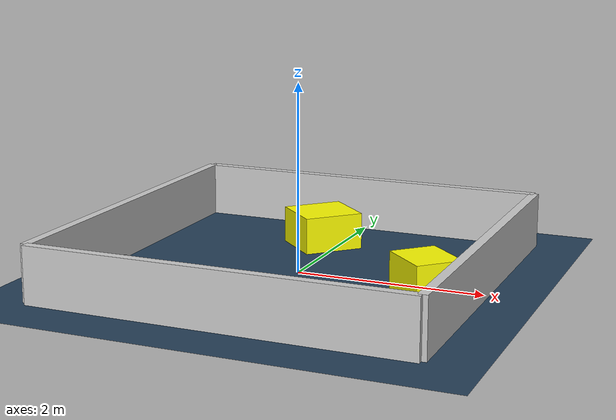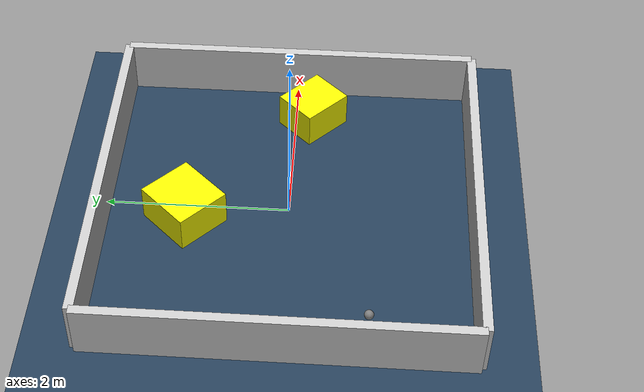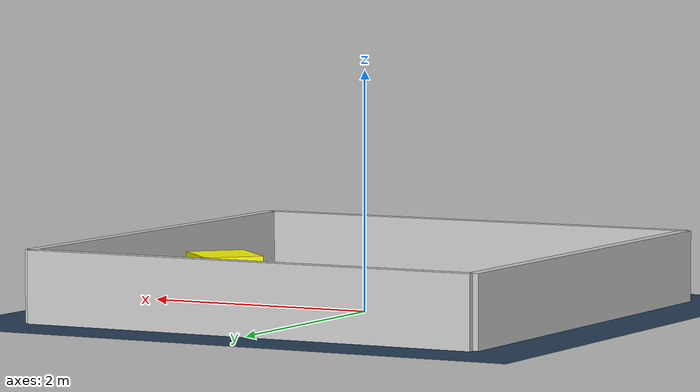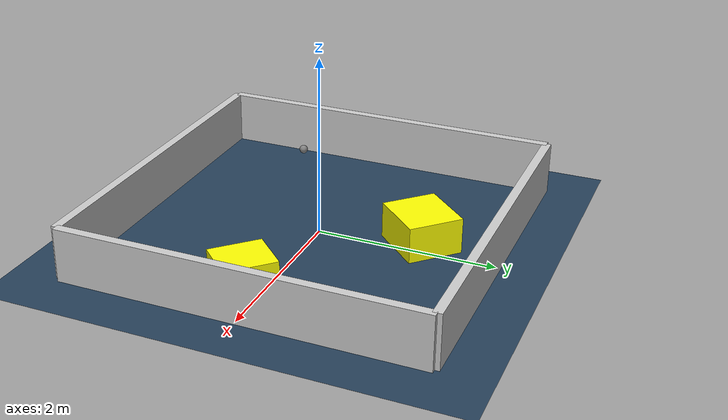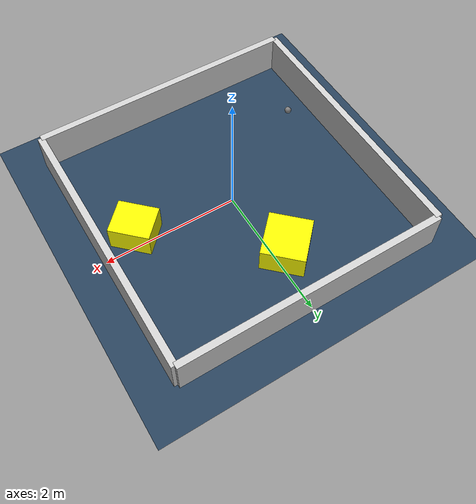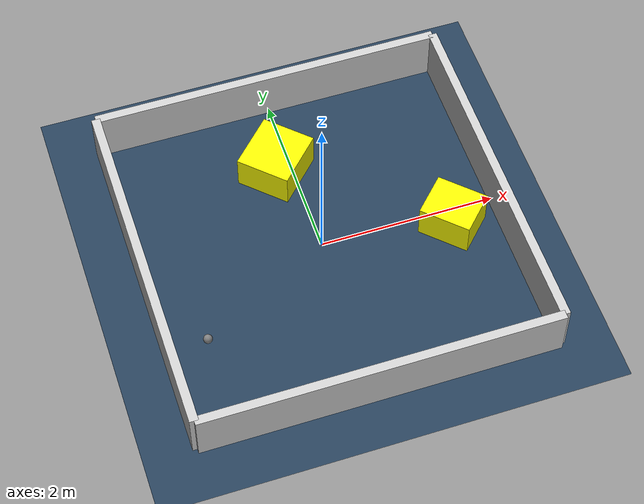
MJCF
<?xml version="1.0" ?>
<mujoco model="generated_environment">
  <option timestep="0.01" integrator="RK4" cone="elliptic"/>
  <default>
    <geom density="1"/>
  </default>
  <asset>
    <texture builtin="gradient" height="3072" rgb1="0.3 0.5 0.7" rgb2="0 0 0" type="skybox" width="512"/>
    <texture builtin="checker" height="300" mark="edge" markrgb="0.8 0.8 0.8" name="groundplane" rgb1="0.2 0.3 0.4" rgb2="0.1 0.2 0.3" type="2d" width="300"/>
    <material name="groundplane" reflectance="0.2" texrepeat="5 5" texture="groundplane" texuniform="true"/>
    <material name="robot" rgba="0.0 1.0 0.0 1"/>
  </asset>
  <worldbody>
    <light dir="0 0 -1" directional="true" pos="0 0 1.5"/>
    <geom condim="4" friction="1.0 0.005 0.001" material="groundplane" name="floor" size="0 0 0.05" type="plane"/>
    <body name="walls">
      <geom name="wall_1" condim="4" pos="-2.0 0.0 0.3" rgba="0.800000011920929 0.800000011920929 0.800000011920929 1.0" size="0.05 2.0 0.3" type="box"/>
      <geom name="wall_2" condim="4" pos="2.0 0.0 0.3" rgba="0.800000011920929 0.800000011920929 0.800000011920929 1.0" size="0.05 2.0 0.3" type="box"/>
      <geom name="wall_3" condim="4" pos="0.0 -2.0 0.3" rgba="0.800000011920929 0.800000011920929 0.800000011920929 1.0" size="2.0 0.05 0.3" type="box"/>
      <geom name="wall_4" condim="4" pos="0.0 2.0 0.3" rgba="0.800000011920929 0.800000011920929 0.800000011920929 1.0" size="2.0 0.05 0.3" type="box"/>
    </body>
    <body name="robot">
      <joint name="joint_x" type="slide" pos="0 0 0" axis="1 0 0"/>
      <joint name="joint_y" type="slide" pos="0 0 0" axis="0 1 0"/>
      <geom name="robot" type="sphere" pos="-1.555332483021082 -0.8906749346740617 0.2" size="0.05" mass="5." friction="1.0 0.005 0.0001" condim="4"/>
      <site name="sensor_ball"/>
    </body>
    <body name="obstacle_1_movable">
      <geom name="obstacle_1_movable" condim="4" pos="-0.17868859085606248 1.1171171037021568 0.2" euler="0 0 45.96154768718942" friction="1.0 0.005 0.001" rgba="1 1 0 1" size="0.3314318568464531 0.31005110849612344 0.2" type="box" mass="0.1"/>
      <joint type="free"/>
    </body>
    <body name="obstacle_2_movable">
      <geom name="obstacle_2_movable" condim="4" pos="1.4507056179698363 -0.19283224871561777 0.2" euler="0 0 135.73781204544147" friction="1.0 0.005 0.001" rgba="1 1 0 1" size="0.29440076822365213 0.2536790758477441 0.2" type="box" mass="0.1"/>
      <joint type="free"/>
    </body>
  </worldbody>
  <actuator>
    <motor name="actuator_x" joint="joint_x" gear="1" ctrlrange="-1 1"/>
    <motor name="actuator_y" joint="joint_y" gear="1" ctrlrange="-1 1"/>
  </actuator>
</mujoco>
